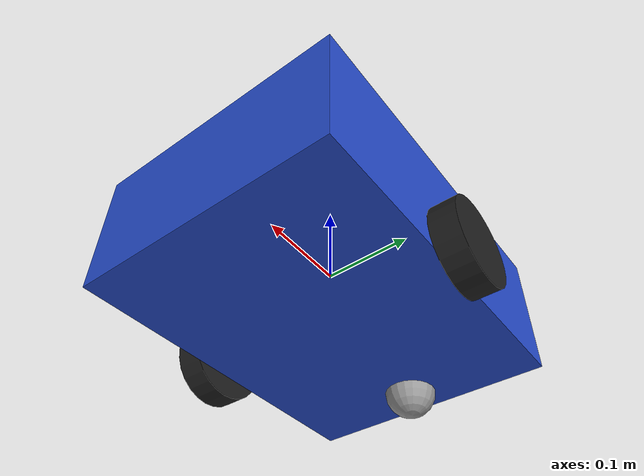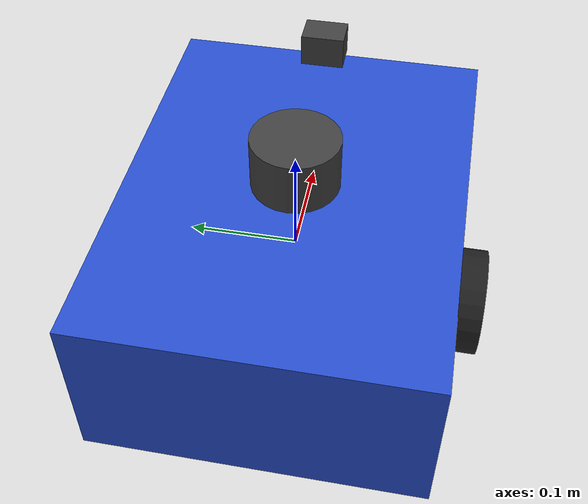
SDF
<sdf version='1.11'>
  <model name='warehouse_robot'>
    <link name='base_link'>
      <inertial>
        <pose>-0.0030909090909090912 0 0.0030909090909090921 0 0 0</pose>
        <mass>5.5</mass>
        <inertia>
          <ixx>0.1048124545454546</ixx>
          <ixy>0</ixy>
          <ixz>-0.004252545454545455</ixz>
          <iyy>0.1121299090909091</iyy>
          <iyz>0</iyz>
          <izz>0.1076174545454546</izz>
        </inertia>
      </inertial>
      <collision name='base_link_collision'>
        <pose>0 0 0 0 0 0</pose>
        <geometry>
          <box>
            <size>0.40000000000000002 0.29999999999999999 0.14999999999999999</size>
          </box>
        </geometry>
        <surface>
          <contact>
            <ode/>
          </contact>
          <friction>
            <ode/>
          </friction>
        </surface>
      </collision>
      <collision name='base_link_fixed_joint_lump__camera_link_collision_1'>
        <pose>0.14999999999999999 0 0.12 0 0 0</pose>
        <geometry>
          <box>
            <size>0.029999999999999999 0.040000000000000001 0.029999999999999999</size>
          </box>
        </geometry>
        <surface>
          <contact>
            <ode/>
          </contact>
          <friction>
            <ode/>
          </friction>
        </surface>
      </collision>
      <collision name='base_link_fixed_joint_lump__caster_wheel_collision_2'>
        <pose>-0.16 0 -0.074999999999999997 0 0 0</pose>
        <geometry>
          <sphere>
            <radius>0.029999999999999999</radius>
          </sphere>
        </geometry>
        <surface>
          <contact>
            <ode/>
          </contact>
          <friction>
            <ode/>
          </friction>
        </surface>
      </collision>
      <collision name='base_link_fixed_joint_lump__lidar_link_collision_3'>
        <pose>0 0 0.10000000000000001 0 0 0</pose>
        <geometry>
          <cylinder>
            <length>0.050000000000000003</length>
            <radius>0.040000000000000001</radius>
          </cylinder>
        </geometry>
        <surface>
          <contact>
            <ode/>
          </contact>
          <friction>
            <ode/>
          </friction>
        </surface>
      </collision>
      <visual name='base_link_visual'>
        <pose>0 0 0 0 0 0</pose>
        <geometry>
          <box>
            <size>0.40000000000000002 0.29999999999999999 0.14999999999999999</size>
          </box>
        </geometry>
        <material>
          <script>
            <name>Gazebo/Blue</name>
            <uri>file://media/materials/scripts/gazebo.material</uri>
          </script>
          <diffuse>0 0 1 1</diffuse>
          <ambient>0 0 1 1</ambient>
        </material>
      </visual>
      <visual name='base_link_fixed_joint_lump__camera_link_visual_1'>
        <pose>0.14999999999999999 0 0.12 0 0 0</pose>
        <geometry>
          <box>
            <size>0.029999999999999999 0.040000000000000001 0.029999999999999999</size>
          </box>
        </geometry>
        <material>
          <diffuse>0.25 0.25 0.25 1</diffuse>
          <ambient>0.25 0.25 0.25 1</ambient>
        </material>
      </visual>
      <visual name='base_link_fixed_joint_lump__caster_wheel_visual_2'>
        <pose>-0.16 0 -0.074999999999999997 0 0 0</pose>
        <geometry>
          <sphere>
            <radius>0.029999999999999999</radius>
          </sphere>
        </geometry>
        <material>
          <script>
            <name>Gazebo/Grey</name>
            <uri>file://media/materials/scripts/gazebo.material</uri>
          </script>
          <diffuse>0.625 0.625 0.625 1</diffuse>
          <ambient>0.625 0.625 0.625 1</ambient>
        </material>
      </visual>
      <visual name='base_link_fixed_joint_lump__lidar_link_visual_3'>
        <pose>0 0 0.10000000000000001 0 0 0</pose>
        <geometry>
          <cylinder>
            <length>0.050000000000000003</length>
            <radius>0.040000000000000001</radius>
          </cylinder>
        </geometry>
        <material>
          <diffuse>0.25 0.25 0.25 1</diffuse>
          <ambient>0.25 0.25 0.25 1</ambient>
        </material>
      </visual>
      <sensor name='camera_sensor' type='camera'>
        <always_on>true</always_on>
        <update_rate>30</update_rate>
        <visualize>true</visualize>
        <topic>camera</topic>
        <camera>
          <horizontal_fov>1.3962634</horizontal_fov>
          <image>
            <width>640</width>
            <height>480</height>
            <format>R8G8B8</format>
          </image>
          <clip>
            <near>0.10000000000000001</near>
            <far>100</far>
          </clip>
        </camera>
        <pose>0.14999999999999999 0 0.12 0 0 0</pose>
      </sensor>
      <sensor name='lidar_sensor' type='gpu_lidar'>
        <always_on>true</always_on>
        <visualize>true</visualize>
        <update_rate>10</update_rate>
        <topic>scan</topic>
        <lidar>
          <scan>
            <horizontal>
              <samples>360</samples>
              <resolution>1</resolution>
              <min_angle>-3.1415899999999999</min_angle>
              <max_angle>3.1415899999999999</max_angle>
            </horizontal>
            <vertical>
              <samples>1</samples>
              <resolution>1</resolution>
              <min_angle>0</min_angle>
              <max_angle>0</max_angle>
            </vertical>
          </scan>
          <range>
            <min>0.10000000000000001</min>
            <max>12</max>
            <resolution>0.01</resolution>
          </range>
          <noise>
            <type>gaussian</type>
            <mean>0</mean>
            <stddev>0.01</stddev>
          </noise>
        </lidar>
        <pose>0 0 0.10000000000000001 0 0 0</pose>
      </sensor>
    </link>
    <joint name='left_wheel_joint' type='revolute'>
      <pose relative_to='base_link'>0 0.16500000000000001 -0.050000000000000003 0 0 0</pose>
      <parent>base_link</parent>
      <child>left_wheel</child>
      <axis>
        <xyz>0 1 0</xyz>
        <limit>
          <lower>-inf</lower>
          <upper>inf</upper>
        </limit>
        <dynamics>
          <spring_reference>0</spring_reference>
          <spring_stiffness>0</spring_stiffness>
        </dynamics>
      </axis>
    </joint>
    <link name='left_wheel'>
      <pose relative_to='left_wheel_joint'>0 0 0 0 0 0</pose>
      <inertial>
        <pose>0 0 0 0 0 0</pose>
        <mass>0.5</mass>
        <inertia>
          <ixx>0.001</ixx>
          <ixy>0</ixy>
          <ixz>0</ixz>
          <iyy>0.001</iyy>
          <iyz>0</iyz>
          <izz>0.001</izz>
        </inertia>
      </inertial>
      <collision name='left_wheel_collision'>
        <pose>0 0 0 1.5708 0 0</pose>
        <geometry>
          <cylinder>
            <length>0.029999999999999999</length>
            <radius>0.050000000000000003</radius>
          </cylinder>
        </geometry>
        <surface>
          <contact>
            <ode/>
          </contact>
          <friction>
            <ode/>
          </friction>
        </surface>
      </collision>
      <visual name='left_wheel_visual'>
        <pose>0 0 0 1.5708 0 0</pose>
        <geometry>
          <cylinder>
            <length>0.029999999999999999</length>
            <radius>0.050000000000000003</radius>
          </cylinder>
        </geometry>
        <material>
          <script>
            <name>Gazebo/Black</name>
            <uri>file://media/materials/scripts/gazebo.material</uri>
          </script>
          <diffuse>0.25 0.25 0.25 1</diffuse>
          <ambient>0.25 0.25 0.25 1</ambient>
        </material>
      </visual>
    </link>
    <joint name='right_wheel_joint' type='revolute'>
      <pose relative_to='base_link'>0 -0.16500000000000001 -0.050000000000000003 0 0 0</pose>
      <parent>base_link</parent>
      <child>right_wheel</child>
      <axis>
        <xyz>0 1 0</xyz>
        <limit>
          <lower>-inf</lower>
          <upper>inf</upper>
        </limit>
        <dynamics>
          <spring_reference>0</spring_reference>
          <spring_stiffness>0</spring_stiffness>
        </dynamics>
      </axis>
    </joint>
    <link name='right_wheel'>
      <pose relative_to='right_wheel_joint'>0 0 0 0 0 0</pose>
      <inertial>
        <pose>0 0 0 0 0 0</pose>
        <mass>0.5</mass>
        <inertia>
          <ixx>0.001</ixx>
          <ixy>0</ixy>
          <ixz>0</ixz>
          <iyy>0.001</iyy>
          <iyz>0</iyz>
          <izz>0.001</izz>
        </inertia>
      </inertial>
      <collision name='right_wheel_collision'>
        <pose>0 0 0 1.5708 0 0</pose>
        <geometry>
          <cylinder>
            <length>0.029999999999999999</length>
            <radius>0.050000000000000003</radius>
          </cylinder>
        </geometry>
        <surface>
          <contact>
            <ode/>
          </contact>
          <friction>
            <ode/>
          </friction>
        </surface>
      </collision>
      <visual name='right_wheel_visual'>
        <pose>0 0 0 1.5708 0 0</pose>
        <geometry>
          <cylinder>
            <length>0.029999999999999999</length>
            <radius>0.050000000000000003</radius>
          </cylinder>
        </geometry>
        <material>
          <script>
            <name>Gazebo/Black</name>
            <uri>file://media/materials/scripts/gazebo.material</uri>
          </script>
          <diffuse>0.25 0.25 0.25 1</diffuse>
          <ambient>0.25 0.25 0.25 1</ambient>
        </material>
      </visual>
    </link>
    <plugin name='gz::sim::systems::JointStatePublisher' filename='gz-sim-joint-state-publisher-system'>
      <topic>joint_states</topic>
      <joint_name>left_wheel_joint</joint_name>
      <joint_name>right_wheel_joint</joint_name>
    </plugin>
    <plugin name='gz::sim::systems::DiffDrive' filename='gz-sim-diff-drive-system'>
      <left_joint>left_wheel_joint</left_joint>
      <right_joint>right_wheel_joint</right_joint>
      <wheel_separation>0.33</wheel_separation>
      <wheel_radius>0.05</wheel_radius>
      <topic>cmd_vel</topic>
      <odom_topic>odom</odom_topic>
      <odom_publisher_frequency>30</odom_publisher_frequency>
      <tf_topic>/tf</tf_topic>
      <frame_id>odom</frame_id>
      <child_frame_id>base_link</child_frame_id>
      <publish_odom>true</publish_odom>
      <publish_odom_tf>true</publish_odom_tf>
      <publish_wheel_tf>true</publish_wheel_tf>
    </plugin>
    <frame name='camera_joint' attached_to='base_link'>
      <pose>0.14999999999999999 0 0.12 0 0 0</pose>
    </frame>
    <frame name='camera_link' attached_to='camera_joint'>
      <pose>0 0 0 0 0 0</pose>
    </frame>
    <frame name='caster_joint' attached_to='base_link'>
      <pose>-0.16 0 -0.074999999999999997 0 0 0</pose>
    </frame>
    <frame name='caster_wheel' attached_to='caster_joint'>
      <pose>0 0 0 0 0 0</pose>
    </frame>
    <frame name='lidar_joint' attached_to='base_link'>
      <pose>0 0 0.10000000000000001 0 0 0</pose>
    </frame>
    <frame name='lidar_link' attached_to='lidar_joint'>
      <pose>0 0 0 0 0 0</pose>
    </frame>
  </model>
</sdf>
